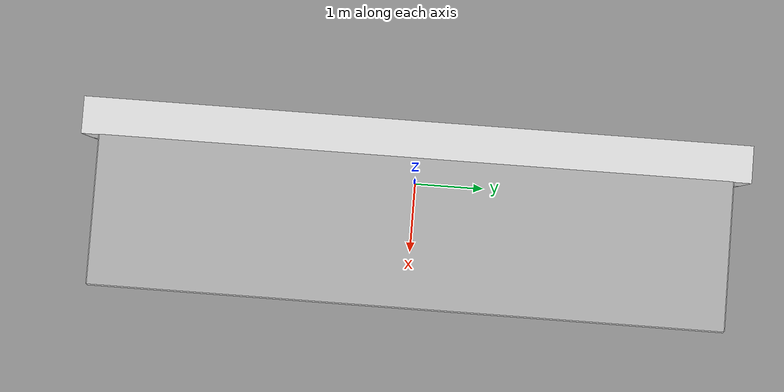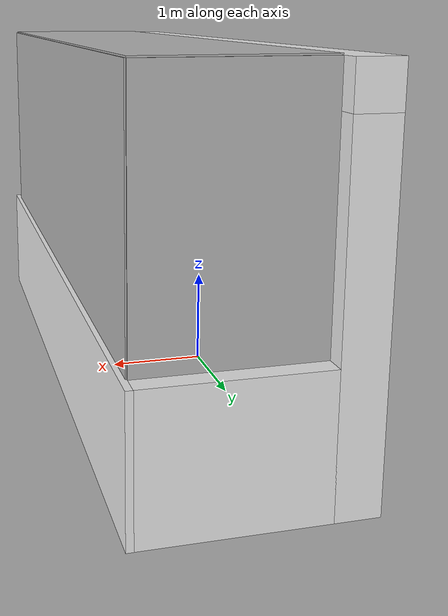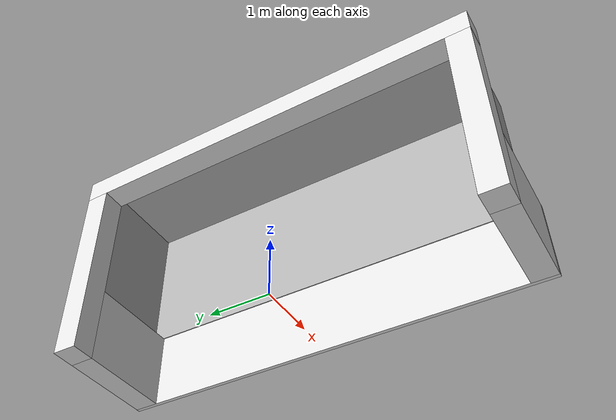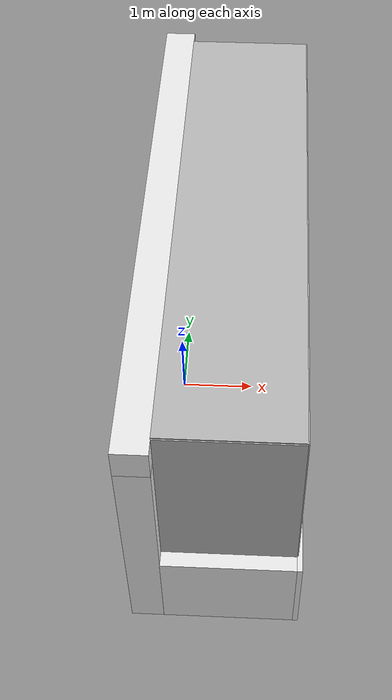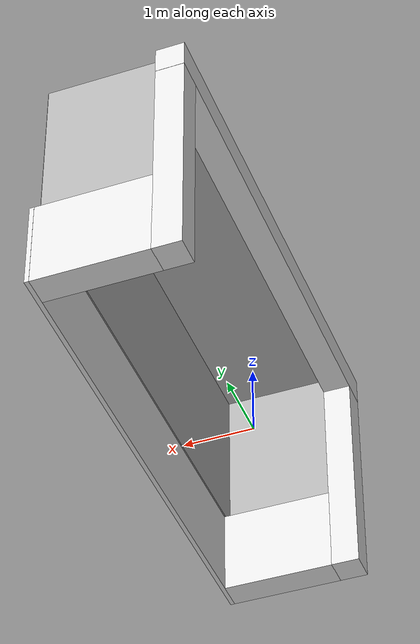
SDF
<?xml version="1.0" ?>
<sdf version="1.4">
  <model name="RoboCup15_MSL_Goal">
    <static>true</static>

    <link name="left_post">
      <pose>-0.203 3.453 1.625 0 0 0</pose>
      <collision name="collision">
        <geometry><box><size>0.41 0.41 3.25</size></box></geometry>
      </collision>
      <visual name="visual">
        <geometry><box><size>0.41 0.41 3.25</size></box></geometry>
        <material><script><uri>model://MSL_models15/RoboCup15_MSL_Goal/materials/scripts/gazebo.material</uri><name>Gazebo/White</name></script></material>
      </visual>
    </link>

    <link name="right_post">
      <pose>-0.203 -3.453 1.625 0 0 0</pose>
      <collision name="collision">
        <geometry><box><size>0.41 0.41 3.25</size></box></geometry>
      </collision>
      <visual name="visual">
        <geometry><box><size>0.41 0.41 3.25</size></box></geometry>
        <material><script><uri>model://MSL_models15/RoboCup15_MSL_Goal/materials/scripts/gazebo.material</uri><name>Gazebo/White</name></script></material>
      </visual>
    </link>

    <link name="crossbar">
      <pose>-0.203 0 3.453 0 0 0</pose>
      <collision name="collision">
        <geometry><box><size>0.41 7.32 0.41</size></box></geometry>
      </collision>
      <visual name="visual">
        <geometry><box><size>0.41 7.32 0.41</size></box></geometry>
        <material><script><uri>model://MSL_models15/RoboCup15_MSL_Goal/materials/scripts/gazebo.material</uri><name>Gazebo/White</name></script></material>
      </visual>
    </link>

    <link name="left_support_horiz_lower">
      <pose>0.813 3.453 0.650 0 0 0</pose>
      <collision name="collision">
        <geometry><box><size>1.63 0.41 1.30</size></box></geometry>
      </collision>
      <visual name="visual">
        <geometry><box><size>1.63 0.41 1.30</size></box></geometry>
        <material><script><uri>model://MSL_models15/RoboCup15_MSL_Goal/materials/scripts/gazebo.material</uri><name>Gazebo/White</name></script></material>
      </visual>
    </link>

    <link name="right_support_horiz_lower">
      <pose>0.813 -3.453 0.650 0 0 0</pose>
      <collision name="collision">
        <geometry><box><size>1.63 0.41 1.30</size></box></geometry>
      </collision>
      <visual name="visual">
        <geometry><box><size>1.63 0.41 1.30</size></box></geometry>
        <material><script><uri>model://MSL_models15/RoboCup15_MSL_Goal/materials/scripts/gazebo.material</uri><name>Gazebo/White</name></script></material>
      </visual>
    </link>

    <link name="center_support_horiz_lower">
      <pose>1.658 0 0.650 0 0 0</pose>
      <collision name="collision">
        <geometry><box><size>0.065 7.32 1.30</size></box></geometry>
      </collision>
      <visual name="visual">
        <geometry><box><size>0.065 7.32 1.30</size></box></geometry>
        <material><script><uri>model://MSL_models15/RoboCup15_MSL_Goal/materials/scripts/gazebo.material</uri><name>Gazebo/White</name></script></material>
      </visual>
    </link>

    <link name="center_net">
      <pose>1.625 0 2.478 0 0 0</pose>
      <collision name="collision">
        <geometry><box><size>0.033 6.91 2.36</size></box></geometry>
      </collision>
      <visual name="visual">
        <geometry><box><size>0.033 6.91 2.36</size></box></geometry>
        <material>
          <script>
            <uri>model://MSL_models15/RoboCup15_MSL_Goal/materials/scripts/</uri>
            <uri>model://MSL_models15/RoboCup15_MSL_Goal/materials/textures/</uri>
            <name>RoboCup/Net</name>
          </script>
        </material>
      </visual>
    </link>

    <link name="left_net">
      <pose>0.813 3.453 2.478 0 0 0</pose>
      <collision name="collision">
        <geometry><box><size>1.63 0.033 2.36</size></box></geometry>
      </collision>
      <visual name="visual">
        <geometry><box><size>1.63 0.033 2.36</size></box></geometry>
        <material>
          <script>
            <uri>model://MSL_models15/RoboCup15_MSL_Goal/materials/scripts/</uri>
            <uri>model://MSL_models15/RoboCup15_MSL_Goal/materials/textures/</uri>
            <name>RoboCup/Net</name>
          </script>
        </material>
      </visual>
    </link>

    <link name="right_net">
      <pose>0.813 -3.453 2.478 0 0 0</pose>
      <collision name="collision">
        <geometry><box><size>1.63 0.033 2.36</size></box></geometry>
      </collision>
      <visual name="visual">
        <geometry><box><size>1.63 0.033 2.36</size></box></geometry>
        <material>
          <script>
            <uri>model://MSL_models15/RoboCup15_MSL_Goal/materials/scripts/</uri>
            <uri>model://MSL_models15/RoboCup15_MSL_Goal/materials/textures/</uri>
            <name>RoboCup/Net</name>
          </script>
        </material>
      </visual>
    </link>

    <link name="upper_net">
      <pose>0.813 0 3.656 0 0 0</pose>
      <collision name="collision">
        <geometry><box><size>1.63 6.91 0.033</size></box></geometry>
      </collision>
      <visual name="visual">
        <geometry><box><size>1.63 6.91 0.033</size></box></geometry>
        <material>
          <script>
            <uri>model://MSL_models15/RoboCup15_MSL_Goal/materials/scripts/</uri>
            <uri>model://MSL_models15/RoboCup15_MSL_Goal/materials/textures/</uri>
            <name>RoboCup/Net</name>
          </script>
        </material>
      </visual>
    </link>

  </model>
</sdf>
